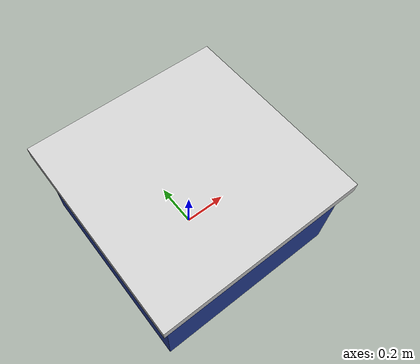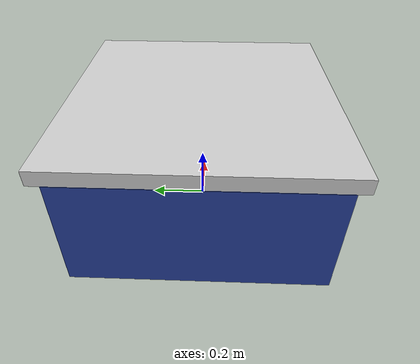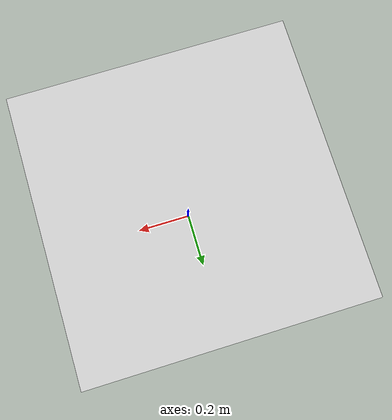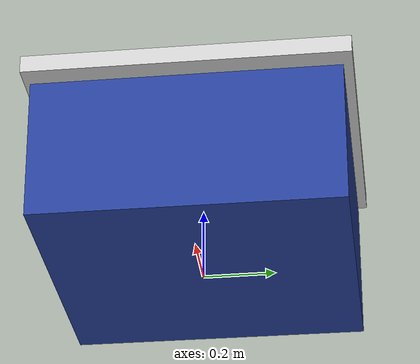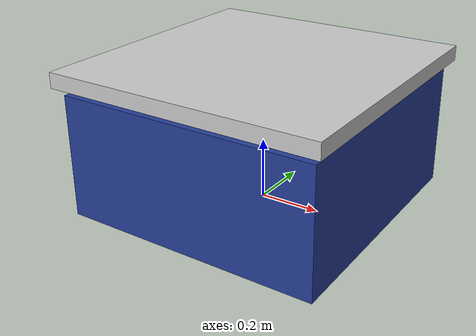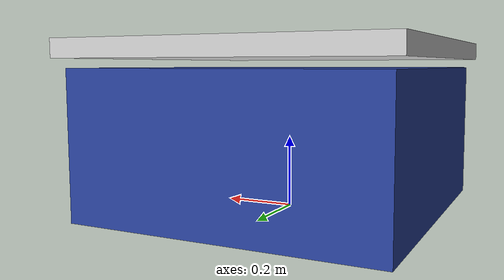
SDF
<?xml version="1.0" ?>
<sdf version="1.6">
  <model name="kitchen_model">
    <static>true</static>
    <link name="link">
      <!-- Counter top -->
      <visual name="countertop">
        <pose>0 0 0.45 0 0 0</pose>
        <geometry>
          <box>
            <size>0.9 0.9 0.05</size>
          </box>
        </geometry>
        <material>
          <ambient>0.7 0.7 0.7 1</ambient>
          <diffuse>0.8 0.8 0.8 1</diffuse>
          <specular>0.3 0.3 0.3 1</specular>
        </material>
      </visual>
      <collision name="countertop_collision">
        <pose>0 0 0.45 0 0 0</pose>
        <geometry>
          <box>
            <size>0.9 0.9 0.05</size>
          </box>
        </geometry>
      </collision>
      <!-- Counter base -->
      <visual name="base">
        <pose>0 0 0.2 0 0 0</pose>
        <geometry>
          <box>
            <size>0.85 0.85 0.4</size>
          </box>
        </geometry>
        <material>
          <ambient>0.15 0.25 0.6 1</ambient>
          <diffuse>0.15 0.25 0.6 1</diffuse>
        </material>
      </visual>
      <collision name="base_collision">
        <pose>0 0 0.2 0 0 0</pose>
        <geometry>
          <box>
            <size>0.85 0.85 0.4</size>
          </box>
        </geometry>
      </collision>
    </link>
  </model>
</sdf>
